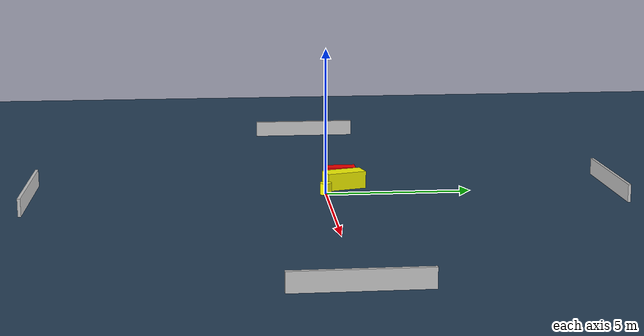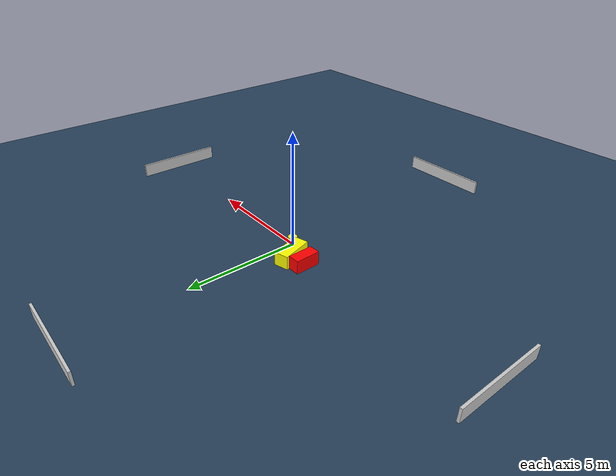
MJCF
<?xml version="1.0" ?>
<mujoco model="generated_environment">
  <option timestep="0.01" integrator="RK4" cone="elliptic"/>
  <default>
    <geom density="1"/>
  </default>
  <asset>
    <texture builtin="gradient" height="3072" name="skybox" rgb1="0.3 0.5 0.7" rgb2="0 0 0" type="skybox" width="512"/>
    <texture builtin="checker" height="300" name="groundplane" rgb1="0.2 0.3 0.4" rgb2="0.1 0.2 0.3" type="2d" width="300"/>
    <material name="groundplane" reflectance="0.2" texrepeat="5 5" texture="groundplane"/>
  </asset>
  <worldbody>
    <light dir="0 0 -1" directional="true" pos="0 0 1.5"/>
    <geom condim="3" friction="0.5 0.005 0.001" material="groundplane" name="floor" pos="0 0 0" size="0 0 0.05" type="plane"/>
    <body name="walls">
      <geom name="wall_1" condim="4" pos="-10.0 0.0 0.3" rgba="0.800000011920929 0.800000011920929 0.800000011920929 1.0" size="0.05 2.0 0.3" type="box"/>
      <geom name="wall_2" condim="4" pos="10.0 0.0 0.3" rgba="0.800000011920929 0.800000011920929 0.800000011920929 1.0" size="0.05 2.0 0.3" type="box"/>
      <geom name="wall_3" condim="4" pos="0.0 -10.0 0.3" rgba="0.800000011920929 0.800000011920929 0.800000011920929 1.0" size="2.0 0.05 0.3" type="box"/>
      <geom name="wall_4" condim="4" pos="0.0 10.0 0.3" rgba="0.800000011920929 0.800000011920929 0.800000011920929 1.0" size="2.0 0.05 0.3" type="box"/>
    </body>
    <body name="robot">
      <joint name="joint_x" type="slide" pos="0 0 0" axis="1 0 0"/>
      <joint name="joint_y" type="slide" pos="0 0 0" axis="0 1 0"/>
      <geom name="robot" type="cylinder" pos="0.0 0.0 0.2" size="0.2 0.2 0.0" mass="5.0" friction="1.0 0.005 0.0001" condim="4" rgba="1.0 1.0 0.0 1.0"/>
    </body>
    <body name="obstacle_1_movable">
      <geom name="obstacle_1_movable" condim="4" pos="-0.8276193887181651 0.721083355927945 0.3" euler="0 0 105.47155559554413" friction="0.0 0.005 0.001" rgba="1.0 1.0 0.0 1.0" size="0.6973033304904566 0.3116679257080841 0.3" type="box" mass="0.1"/>
      <joint type="free"/>
    </body>
    <body name="obstacle_2_static">
      <geom name="obstacle_2_static" condim="4" pos="-1.5340855446770496 0.6381634417386894 0.3" euler="0 0 1.0863342217853678" friction="0.0 0.005 0.001" rgba="1.0 0.0 0.0 1.0" size="0.24865991066612056 0.5510313056808407 0.3" type="box"/>
    </body>
  </worldbody>
  <actuator>
    <motor name="actuator_x" joint="joint_x" gear="1" ctrlrange="-1 1"/>
    <motor name="actuator_y" joint="joint_y" gear="1" ctrlrange="-1 1"/>
  </actuator>
</mujoco>
